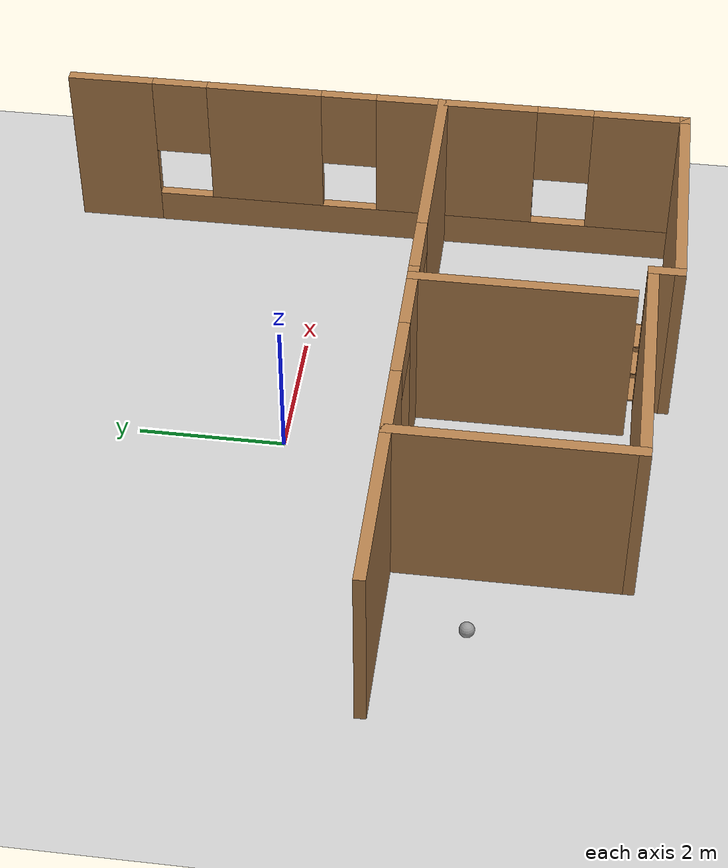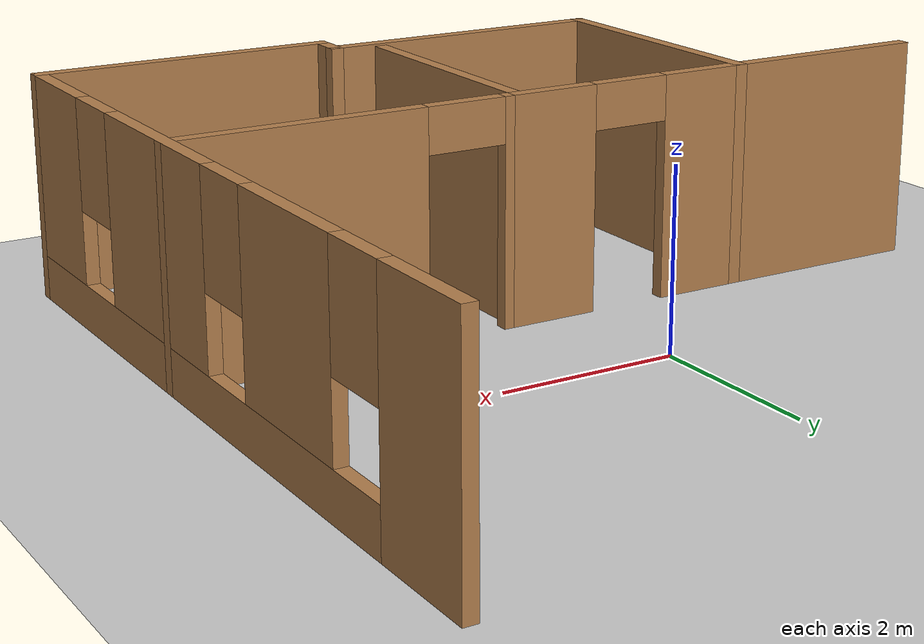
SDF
<sdf version="1.6">
 <world name="default">
  <model name="ground_plane">
   <static>1</static>
   <link name="link">
    <collision name="collision">
     <geometry><plane><normal>0 0 1</normal><size>100 100</size></plane></geometry>
     <surface><friction><ode><mu>100</mu><mu2>50</mu2></ode></friction></surface>
    </collision>
    <visual name="visual">
     <cast_shadows>0</cast_shadows>
     <geometry><plane><normal>0 0 1</normal><size>100 100</size></plane></geometry>
     <material>
      <script><uri>file://media/materials/scripts/gazebo.material</uri><name>Gazebo/Grey</name></script>
     </material>
    </visual>
   </link>
  </model>
  <model name="cabinet">
   <static>1</static>
   <link name="cabinet_bottom_plate">
    <inertial>
     <pose>0 0 -1 0 -0 0</pose>
     <inertia><ixx>2.05</ixx><ixy>0</ixy><ixz>0</ixz><iyy>2.05</iyy><iyz>0</iyz><izz>2.05</izz></inertia>
     <mass>25</mass>
    </inertial>
    <collision name="cabinet_bottom_plate_geom">
     <pose>0 0 0.01 0 -0 0</pose>
     <geometry><box><size>0.45 0.45 0.02</size></box></geometry>
    </collision>
    <visual name="cabinet_bottom_plate_geom_visual">
     <pose>0 0 0.01 0 -0 0</pose>
     <geometry><box><size>0.45 0.45 0.02</size></box></geometry>
     <material>
      <script><uri>file://media/materials/scripts/gazebo.material</uri><name>Gazebo/Wood</name></script>
     </material>
    </visual>
    <collision name="cabinet_bottom_plate_geom_cabinet_back_plate">
     <pose>0.235 0 0.51 0 -0 0</pose>
     <geometry><box><size>0.02 0.45 1.02</size></box></geometry>
    </collision>
    <visual name="cabinet_bottom_plate_geom_cabinet_back_plate_visual">
     <pose>0.235 0 0.51 0 -0 0</pose>
     <geometry><box><size>0.02 0.45 1.02</size></box></geometry>
     <material>
      <script><uri>file://media/materials/scripts/gazebo.material</uri><name>Gazebo/Wood</name></script>
     </material>
    </visual>
    <collision name="cabinet_bottom_plate_geom_cabinet_left_plate">
     <pose>0 0.235 0.51 0 -0 0</pose>
     <geometry><box><size>0.45 0.02 1.02</size></box></geometry>
    </collision>
    <visual name="cabinet_bottom_plate_geom_cabinet_left_plate_visual">
     <pose>0 0.235 0.51 0 -0 0</pose>
     <geometry><box><size>0.45 0.02 1.02</size></box></geometry>
     <material>
      <script><uri>file://media/materials/scripts/gazebo.material</uri><name>Gazebo/Wood</name></script>
     </material>
    </visual>
    <collision name="cabinet_bottom_plate_geom_cabinet_middle_plate">
     <pose>0 0 0.51 0 -0 0</pose>
     <geometry><box><size>0.45 0.45 0.02</size></box></geometry>
    </collision>
    <visual name="cabinet_bottom_plate_geom_cabinet_middle_plate_visual">
     <pose>0 0 0.51 0 -0 0</pose>
     <geometry><box><size>0.45 0.45 0.02</size></box></geometry>
     <material>
      <script><uri>file://media/materials/scripts/gazebo.material</uri><name>Gazebo/Wood</name></script>
     </material>
    </visual>
    <collision name="cabinet_bottom_plate_geom_cabinet_right_plate">
     <pose>0 -0.235 0.51 0 -0 0</pose>
     <geometry><box><size>0.45 0.02 1.02</size></box></geometry>
    </collision>
    <visual name="cabinet_bottom_plate_geom_cabinet_right_plate_visual">
     <pose>0 -0.235 0.51 0 -0 0</pose>
     <geometry><box><size>0.45 0.02 1.02</size></box></geometry>
     <material>
      <script><uri>file://media/materials/scripts/gazebo.material</uri><name>Gazebo/Wood</name></script>
     </material>
    </visual>
    <collision name="cabinet_bottom_plate_geom_cabinet_top_plate">
     <pose>0 0 1.01 0 -0 0</pose>
     <geometry><box><size>0.45 0.45 0.02</size></box></geometry>
    </collision>
    <visual name="cabinet_bottom_plate_geom_cabinet_top_plate_visual">
     <pose>0 0 1.01 0 -0 0</pose>
     <geometry><box><size>0.45 0.45 0.02</size></box></geometry>
     <material>
      <script><uri>file://media/materials/scripts/gazebo.material</uri><name>Gazebo/Wood</name></script>
     </material>
    </visual>
   </link>
   <pose>1.66738 -4.78154 0 0 -0 0</pose>
  </model>
  <model name="badrs">
   <link name="Wall_21">
    <pose>4.52353 -0.681546 0 0 0 -1.5708</pose>
    <inertial>
     <mass>1</mass>
     <inertia><ixx>1</ixx><ixy>0</ixy><ixz>0</ixz><iyy>1</iyy><iyz>0</iyz><izz>1</izz></inertia>
    </inertial>
    <visual name="Wall_21_Visual_0">
     <pose>-3.88245 0 1.25 0 -0 0</pose>
     <geometry><box><size>1.2351 0.15 2.5</size></box></geometry>
     <material>
      <script><uri>file://media/materials/scripts/gazebo.material</uri><name>Gazebo/Wood</name></script>
      <ambient>1 1 1 1</ambient>
      <shader type="pixel"><normal_map>__default__</normal_map></shader>
      <diffuse>1 1 1 1</diffuse>
      <specular>0 0 0 1</specular>
      <emissive>0 0 0 1</emissive>
     </material>
     <meta><layer>0</layer></meta>
    </visual>
    <visual name="Wall_21_Visual_1">
     <pose>0.617551 0 0.25 0 -0 0</pose>
     <geometry><box><size>7.7649 0.15 0.5</size></box></geometry>
     <material>
      <script><uri>file://media/materials/scripts/gazebo.material</uri><name>Gazebo/Wood</name></script>
      <ambient>1 1 1 1</ambient>
      <shader type="pixel"><normal_map>__default__</normal_map></shader>
      <diffuse>1 1 1 1</diffuse>
      <specular>0 0 0 1</specular>
      <emissive>0 0 0 1</emissive>
     </material>
     <meta><layer>0</layer></meta>
    </visual>
    <visual name="Wall_21_Visual_2">
     <pose>-1.62599 0 1.5 0 -0 0</pose>
     <geometry><box><size>1.67781 0.15 2</size></box></geometry>
     <material>
      <script><uri>file://media/materials/scripts/gazebo.material</uri><name>Gazebo/Wood</name></script>
      <ambient>1 1 1 1</ambient>
      <shader type="pixel"><normal_map>__default__</normal_map></shader>
      <diffuse>1 1 1 1</diffuse>
      <specular>0 0 0 1</specular>
      <emissive>0 0 0 1</emissive>
     </material>
     <meta><layer>0</layer></meta>
    </visual>
    <visual name="Wall_21_Visual_3">
     <pose>1.17301 0 1.5 0 -0 0</pose>
     <geometry><box><size>2.3202 0.15 2</size></box></geometry>
     <material>
      <script><uri>file://media/materials/scripts/gazebo.material</uri><name>Gazebo/Wood</name></script>
      <ambient>1 1 1 1</ambient>
      <shader type="pixel"><normal_map>__default__</normal_map></shader>
      <diffuse>1 1 1 1</diffuse>
      <specular>0 0 0 1</specular>
      <emissive>0 0 0 1</emissive>
     </material>
     <meta><layer>0</layer></meta>
    </visual>
    <visual name="Wall_21_Visual_4">
     <pose>3.81656 0 1.5 0 -0 0</pose>
     <geometry><box><size>1.36689 0.15 2</size></box></geometry>
     <material>
      <script><uri>file://media/materials/scripts/gazebo.material</uri><name>Gazebo/Wood</name></script>
      <ambient>1 1 1 1</ambient>
      <shader type="pixel"><normal_map>__default__</normal_map></shader>
      <diffuse>1 1 1 1</diffuse>
      <specular>0 0 0 1</specular>
      <emissive>0 0 0 1</emissive>
     </material>
     <meta><layer>0</layer></meta>
    </visual>
    <visual name="Wall_21_Visual_5">
     <pose>-2.8649 0 1.9 0 -0 0</pose>
     <geometry><box><size>0.8 0.15 1.2</size></box></geometry>
     <material>
      <script><uri>file://media/materials/scripts/gazebo.material</uri><name>Gazebo/Wood</name></script>
      <ambient>1 1 1 1</ambient>
      <shader type="pixel"><normal_map>__default__</normal_map></shader>
      <diffuse>1 1 1 1</diffuse>
      <specular>0 0 0 1</specular>
      <emissive>0 0 0 1</emissive>
     </material>
     <meta><layer>0</layer></meta>
    </visual>
    <visual name="Wall_21_Visual_6">
     <pose>-0.38709 0 1.9 0 -0 0</pose>
     <geometry><box><size>0.8 0.15 1.2</size></box></geometry>
     <material>
      <script><uri>file://media/materials/scripts/gazebo.material</uri><name>Gazebo/Wood</name></script>
      <ambient>1 1 1 1</ambient>
      <shader type="pixel"><normal_map>__default__</normal_map></shader>
      <diffuse>1 1 1 1</diffuse>
      <specular>0 0 0 1</specular>
      <emissive>0 0 0 1</emissive>
     </material>
     <meta><layer>0</layer></meta>
    </visual>
    <visual name="Wall_21_Visual_7">
     <pose>2.73311 0 1.9 0 -0 0</pose>
     <geometry><box><size>0.8 0.15 1.2</size></box></geometry>
     <material>
      <script><uri>file://media/materials/scripts/gazebo.material</uri><name>Gazebo/Wood</name></script>
      <ambient>1 1 1 1</ambient>
      <shader type="pixel"><normal_map>__default__</normal_map></shader>
      <diffuse>1 1 1 1</diffuse>
      <specular>0 0 0 1</specular>
      <emissive>0 0 0 1</emissive>
     </material>
     <meta><layer>0</layer></meta>
    </visual>
    <collision name="Wall_21_Collision_0">
     <pose>-3.88245 0 1.25 0 -0 0</pose>
     <geometry><box><size>1.2351 0.15 2.5</size></box></geometry>
     <surface>
      <friction>
       <ode><mu>1</mu><mu2>1</mu2><fdir1>0 0 0</fdir1><slip1>0</slip1><slip2>0</slip2></ode>
       <torsional>
        <coefficient>1</coefficient>
        <patch_radius>0</patch_radius>
        <surface_radius>0</surface_radius>
        <use_patch_radius>1</use_patch_radius>
        <ode><slip>0</slip></ode>
       </torsional>
      </friction>
      <bounce><restitution_coefficient>0</restitution_coefficient><threshold>1e+06</threshold></bounce>
      <contact>
       <collide_without_contact>0</collide_without_contact>
       <collide_without_contact_bitmask>1</collide_without_contact_bitmask>
       <collide_bitmask>1</collide_bitmask>
       <ode>
        <soft_cfm>0</soft_cfm>
        <soft_erp>0.2</soft_erp>
        <kp>1e+13</kp>
        <kd>1</kd>
        <max_vel>0.01</max_vel>
        <min_depth>0</min_depth>
       </ode>
       <bullet>
        <split_impulse>1</split_impulse>
        <split_impulse_penetration_threshold>-0.01</split_impulse_penetration_threshold>
        <soft_cfm>0</soft_cfm>
        <soft_erp>0.2</soft_erp>
        <kp>1e+13</kp>
        <kd>1</kd>
       </bullet>
      </contact>
     </surface>
    </collision>
    <collision name="Wall_21_Collision_1">
     <pose>0.617551 0 0.25 0 -0 0</pose>
     <geometry><box><size>7.7649 0.15 0.5</size></box></geometry>
     <surface>
      <friction>
       <ode><mu>1</mu><mu2>1</mu2><fdir1>0 0 0</fdir1><slip1>0</slip1><slip2>0</slip2></ode>
       <torsional>
        <coefficient>1</coefficient>
        <patch_radius>0</patch_radius>
        <surface_radius>0</surface_radius>
        <use_patch_radius>1</use_patch_radius>
        <ode><slip>0</slip></ode>
       </torsional>
      </friction>
      <bounce><restitution_coefficient>0</restitution_coefficient><threshold>1e+06</threshold></bounce>
      <contact>
       <collide_without_contact>0</collide_without_contact>
       <collide_without_contact_bitmask>1</collide_without_contact_bitmask>
       <collide_bitmask>1</collide_bitmask>
       <ode>
        <soft_cfm>0</soft_cfm>
        <soft_erp>0.2</soft_erp>
        <kp>1e+13</kp>
        <kd>1</kd>
        <max_vel>0.01</max_vel>
        <min_depth>0</min_depth>
       </ode>
       <bullet>
        <split_impulse>1</split_impulse>
        <split_impulse_penetration_threshold>-0.01</split_impulse_penetration_threshold>
        <soft_cfm>0</soft_cfm>
        <soft_erp>0.2</soft_erp>
        <kp>1e+13</kp>
        <kd>1</kd>
       </bullet>
      </contact>
     </surface>
    </collision>
    <collision name="Wall_21_Collision_2">
     <pose>-1.62599 0 1.5 0 -0 0</pose>
     <geometry><box><size>1.67781 0.15 2</size></box></geometry>
     <surface>
      <friction>
       <ode><mu>1</mu><mu2>1</mu2><fdir1>0 0 0</fdir1><slip1>0</slip1><slip2>0</slip2></ode>
       <torsional>
        <coefficient>1</coefficient>
        <patch_radius>0</patch_radius>
        <surface_radius>0</surface_radius>
        <use_patch_radius>1</use_patch_radius>
        <ode><slip>0</slip></ode>
       </torsional>
      </friction>
      <bounce><restitution_coefficient>0</restitution_coefficient><threshold>1e+06</threshold></bounce>
      <contact>
       <collide_without_contact>0</collide_without_contact>
       <collide_without_contact_bitmask>1</collide_without_contact_bitmask>
       <collide_bitmask>1</collide_bitmask>
       <ode>
        <soft_cfm>0</soft_cfm>
        <soft_erp>0.2</soft_erp>
        <kp>1e+13</kp>
        <kd>1</kd>
        <max_vel>0.01</max_vel>
        <min_depth>0</min_depth>
       </ode>
       <bullet>
        <split_impulse>1</split_impulse>
        <split_impulse_penetration_threshold>-0.01</split_impulse_penetration_threshold>
        <soft_cfm>0</soft_cfm>
        <soft_erp>0.2</soft_erp>
        <kp>1e+13</kp>
        <kd>1</kd>
       </bullet>
      </contact>
     </surface>
    </collision>
    <collision name="Wall_21_Collision_3">
     <pose>1.17301 0 1.5 0 -0 0</pose>
     <geometry><box><size>2.3202 0.15 2</size></box></geometry>
     <surface>
      <friction>
       <ode><mu>1</mu><mu2>1</mu2><fdir1>0 0 0</fdir1><slip1>0</slip1><slip2>0</slip2></ode>
       <torsional>
        <coefficient>1</coefficient>
        <patch_radius>0</patch_radius>
        <surface_radius>0</surface_radius>
        <use_patch_radius>1</use_patch_radius>
        <ode><slip>0</slip></ode>
       </torsional>
      </friction>
      <bounce><restitution_coefficient>0</restitution_coefficient><threshold>1e+06</threshold></bounce>
      <contact>
       <collide_without_contact>0</collide_without_contact>
       <collide_without_contact_bitmask>1</collide_without_contact_bitmask>
       <collide_bitmask>1</collide_bitmask>
       <ode>
        <soft_cfm>0</soft_cfm>
        <soft_erp>0.2</soft_erp>
        <kp>1e+13</kp>
        <kd>1</kd>
        <max_vel>0.01</max_vel>
        <min_depth>0</min_depth>
       </ode>
       <bullet>
        <split_impulse>1</split_impulse>
        <split_impulse_penetration_threshold>-0.01</split_impulse_penetration_threshold>
        <soft_cfm>0</soft_cfm>
        <soft_erp>0.2</soft_erp>
        <kp>1e+13</kp>
        <kd>1</kd>
       </bullet>
      </contact>
     </surface>
    </collision>
    <collision name="Wall_21_Collision_4">
     <pose>3.81656 0 1.5 0 -0 0</pose>
     <geometry><box><size>1.36689 0.15 2</size></box></geometry>
     <surface>
      <friction>
       <ode><mu>1</mu><mu2>1</mu2><fdir1>0 0 0</fdir1><slip1>0</slip1><slip2>0</slip2></ode>
       <torsional>
        <coefficient>1</coefficient>
        <patch_radius>0</patch_radius>
        <surface_radius>0</surface_radius>
        <use_patch_radius>1</use_patch_radius>
        <ode><slip>0</slip></ode>
       </torsional>
      </friction>
      <bounce><restitution_coefficient>0</restitution_coefficient><threshold>1e+06</threshold></bounce>
      <contact>
       <collide_without_contact>0</collide_without_contact>
       <collide_without_contact_bitmask>1</collide_without_contact_bitmask>
       <collide_bitmask>1</collide_bitmask>
       <ode>
        <soft_cfm>0</soft_cfm>
        <soft_erp>0.2</soft_erp>
        <kp>1e+13</kp>
        <kd>1</kd>
        <max_vel>0.01</max_vel>
        <min_depth>0</min_depth>
       </ode>
       <bullet>
        <split_impulse>1</split_impulse>
        <split_impulse_penetration_threshold>-0.01</split_impulse_penetration_threshold>
        <soft_cfm>0</soft_cfm>
        <soft_erp>0.2</soft_erp>
        <kp>1e+13</kp>
        <kd>1</kd>
       </bullet>
      </contact>
     </surface>
    </collision>
    <collision name="Wall_21_Collision_6">
     <pose>-0.38709 0 1.9 0 -0 0</pose>
     <geometry><box><size>0.8 0.15 1.2</size></box></geometry>
     <surface>
      <friction>
       <ode><mu>1</mu><mu2>1</mu2><fdir1>0 0 0</fdir1><slip1>0</slip1><slip2>0</slip2></ode>
       <torsional>
        <coefficient>1</coefficient>
        <patch_radius>0</patch_radius>
        <surface_radius>0</surface_radius>
        <use_patch_radius>1</use_patch_radius>
        <ode><slip>0</slip></ode>
       </torsional>
      </friction>
      <bounce><restitution_coefficient>0</restitution_coefficient><threshold>1e+06</threshold></bounce>
      <contact>
       <collide_without_contact>0</collide_without_contact>
       <collide_without_contact_bitmask>1</collide_without_contact_bitmask>
       <collide_bitmask>1</collide_bitmask>
       <ode>
        <soft_cfm>0</soft_cfm>
        <soft_erp>0.2</soft_erp>
        <kp>1e+13</kp>
        <kd>1</kd>
        <max_vel>0.01</max_vel>
        <min_depth>0</min_depth>
       </ode>
       <bullet>
        <split_impulse>1</split_impulse>
        <split_impulse_penetration_threshold>-0.01</split_impulse_penetration_threshold>
        <soft_cfm>0</soft_cfm>
        <soft_erp>0.2</soft_erp>
        <kp>1e+13</kp>
        <kd>1</kd>
       </bullet>
      </contact>
     </surface>
    </collision>
    <collision name="Wall_21_Collision_5">
     <pose>-2.8649 0 1.9 0 -0 0</pose>
     <geometry><box><size>0.8 0.15 1.2</size></box></geometry>
     <surface>
      <friction>
       <ode><mu>1</mu><mu2>1</mu2><fdir1>0 0 0</fdir1><slip1>0</slip1><slip2>0</slip2></ode>
       <torsional>
        <coefficient>1</coefficient>
        <patch_radius>0</patch_radius>
        <surface_radius>0</surface_radius>
        <use_patch_radius>1</use_patch_radius>
        <ode><slip>0</slip></ode>
       </torsional>
      </friction>
      <bounce><restitution_coefficient>0</restitution_coefficient><threshold>1e+06</threshold></bounce>
      <contact>
       <collide_without_contact>0</collide_without_contact>
       <collide_without_contact_bitmask>1</collide_without_contact_bitmask>
       <collide_bitmask>1</collide_bitmask>
       <ode>
        <soft_cfm>0</soft_cfm>
        <soft_erp>0.2</soft_erp>
        <kp>1e+13</kp>
        <kd>1</kd>
        <max_vel>0.01</max_vel>
        <min_depth>0</min_depth>
       </ode>
       <bullet>
        <split_impulse>1</split_impulse>
        <split_impulse_penetration_threshold>-0.01</split_impulse_penetration_threshold>
        <soft_cfm>0</soft_cfm>
        <soft_erp>0.2</soft_erp>
        <kp>1e+13</kp>
        <kd>1</kd>
       </bullet>
      </contact>
     </surface>
    </collision>
    <collision name="Wall_21_Collision_7">
     <pose>2.73311 0 1.9 0 -0 0</pose>
     <geometry><box><size>0.8 0.15 1.2</size></box></geometry>
     <surface>
      <friction>
       <ode><mu>1</mu><mu2>1</mu2><fdir1>0 0 0</fdir1><slip1>0</slip1><slip2>0</slip2></ode>
       <torsional>
        <coefficient>1</coefficient>
        <patch_radius>0</patch_radius>
        <surface_radius>0</surface_radius>
        <use_patch_radius>1</use_patch_radius>
        <ode><slip>0</slip></ode>
       </torsional>
      </friction>
      <bounce><restitution_coefficient>0</restitution_coefficient><threshold>1e+06</threshold></bounce>
      <contact>
       <collide_without_contact>0</collide_without_contact>
       <collide_without_contact_bitmask>1</collide_without_contact_bitmask>
       <collide_bitmask>1</collide_bitmask>
       <ode>
        <soft_cfm>0</soft_cfm>
        <soft_erp>0.2</soft_erp>
        <kp>1e+13</kp>
        <kd>1</kd>
        <max_vel>0.01</max_vel>
        <min_depth>0</min_depth>
       </ode>
       <bullet>
        <split_impulse>1</split_impulse>
        <split_impulse_penetration_threshold>-0.01</split_impulse_penetration_threshold>
        <soft_cfm>0</soft_cfm>
        <soft_erp>0.2</soft_erp>
        <kp>1e+13</kp>
        <kd>1</kd>
       </bullet>
      </contact>
     </surface>
    </collision>
   </link>
   <link name="Wall_22">
    <pose>2.84853 -5.10655 0 0 -0 3.14159</pose>
    <inertial>
     <mass>1</mass>
     <inertia><ixx>1</ixx><ixy>0</ixy><ixz>0</ixz><iyy>1</iyy><iyz>0</iyz><izz>1</izz></inertia>
    </inertial>
    <visual name="Wall_22_Visual">
     <pose>0 0 1.25 0 -0 0</pose>
     <geometry><box><size>3.5 0.15 2.5</size></box></geometry>
     <material>
      <script><uri>file://media/materials/scripts/gazebo.material</uri><name>Gazebo/Wood</name></script>
      <ambient>1 1 1 1</ambient>
      <shader type="pixel"><normal_map>__default__</normal_map></shader>
      <diffuse>1 1 1 1</diffuse>
      <specular>0 0 0 1</specular>
      <emissive>0 0 0 1</emissive>
     </material>
     <meta><layer>0</layer></meta>
    </visual>
    <collision name="Wall_22_Collision">
     <pose>0 0 1.25 0 -0 0</pose>
     <geometry><box><size>3.5 0.15 2.5</size></box></geometry>
     <surface>
      <friction>
       <ode><mu>1</mu><mu2>1</mu2><fdir1>0 0 0</fdir1><slip1>0</slip1><slip2>0</slip2></ode>
       <torsional>
        <coefficient>1</coefficient>
        <patch_radius>0</patch_radius>
        <surface_radius>0</surface_radius>
        <use_patch_radius>1</use_patch_radius>
        <ode><slip>0</slip></ode>
       </torsional>
      </friction>
      <bounce><restitution_coefficient>0</restitution_coefficient><threshold>1e+06</threshold></bounce>
      <contact>
       <collide_without_contact>0</collide_without_contact>
       <collide_without_contact_bitmask>1</collide_without_contact_bitmask>
       <collide_bitmask>1</collide_bitmask>
       <ode>
        <soft_cfm>0</soft_cfm>
        <soft_erp>0.2</soft_erp>
        <kp>1e+13</kp>
        <kd>1</kd>
        <max_vel>0.01</max_vel>
        <min_depth>0</min_depth>
       </ode>
       <bullet>
        <split_impulse>1</split_impulse>
        <split_impulse_penetration_threshold>-0.01</split_impulse_penetration_threshold>
        <soft_cfm>0</soft_cfm>
        <soft_erp>0.2</soft_erp>
        <kp>1e+13</kp>
        <kd>1</kd>
       </bullet>
      </contact>
     </surface>
    </collision>
   </link>
   <link name="Wall_23">
    <pose>1.17353 -4.93155 0 0 -0 1.5708</pose>
    <inertial>
     <mass>1</mass>
     <inertia><ixx>1</ixx><ixy>0</ixy><ixz>0</ixz><iyy>1</iyy><iyz>0</iyz><izz>1</izz></inertia>
    </inertial>
    <visual name="Wall_23_Visual">
     <pose>0 0 1.25 0 -0 0</pose>
     <geometry><box><size>0.5 0.15 2.5</size></box></geometry>
     <material>
      <script><uri>file://media/materials/scripts/gazebo.material</uri><name>Gazebo/Wood</name></script>
      <ambient>1 1 1 1</ambient>
      <shader type="pixel"><normal_map>__default__</normal_map></shader>
      <diffuse>0.7 0.7 0.7 1</diffuse>
      <specular>0.01 0.01 0.01 1</specular>
      <emissive>0 0 0 1</emissive>
     </material>
     <meta><layer>0</layer></meta>
    </visual>
    <collision name="Wall_23_Collision">
     <pose>0 0 1.25 0 -0 0</pose>
     <geometry><box><size>0.5 0.15 2.5</size></box></geometry>
     <surface>
      <friction>
       <ode><mu>1</mu><mu2>1</mu2><fdir1>0 0 0</fdir1><slip1>0</slip1><slip2>0</slip2></ode>
       <torsional>
        <coefficient>1</coefficient>
        <patch_radius>0</patch_radius>
        <surface_radius>0</surface_radius>
        <use_patch_radius>1</use_patch_radius>
        <ode><slip>0</slip></ode>
       </torsional>
      </friction>
      <bounce><restitution_coefficient>0</restitution_coefficient><threshold>1e+06</threshold></bounce>
      <contact>
       <collide_without_contact>0</collide_without_contact>
       <collide_without_contact_bitmask>1</collide_without_contact_bitmask>
       <collide_bitmask>1</collide_bitmask>
       <ode>
        <soft_cfm>0</soft_cfm>
        <soft_erp>0.2</soft_erp>
        <kp>1e+13</kp>
        <kd>1</kd>
        <max_vel>0.01</max_vel>
        <min_depth>0</min_depth>
       </ode>
       <bullet>
        <split_impulse>1</split_impulse>
        <split_impulse_penetration_threshold>-0.01</split_impulse_penetration_threshold>
        <soft_cfm>0</soft_cfm>
        <soft_erp>0.2</soft_erp>
        <kp>1e+13</kp>
        <kd>1</kd>
       </bullet>
      </contact>
     </surface>
    </collision>
   </link>
   <link name="Wall_24">
    <pose>-0.501469 -4.75655 0 0 -0 3.14159</pose>
    <inertial>
     <mass>1</mass>
     <inertia><ixx>1</ixx><ixy>0</ixy><ixz>0</ixz><iyy>1</iyy><iyz>0</iyz><izz>1</izz></inertia>
    </inertial>
    <visual name="Wall_24_Visual">
     <pose>0 0 1.25 0 -0 0</pose>
     <geometry><box><size>3.5 0.15 2.5</size></box></geometry>
     <material>
      <script><uri>file://media/materials/scripts/gazebo.material</uri><name>Gazebo/Wood</name></script>
      <ambient>1 1 1 1</ambient>
      <shader type="pixel"><normal_map>__default__</normal_map></shader>
      <diffuse>1 1 1 1</diffuse>
      <specular>0 0 0 1</specular>
      <emissive>0 0 0 1</emissive>
     </material>
     <meta><layer>0</layer></meta>
    </visual>
    <collision name="Wall_24_Collision">
     <pose>0 0 1.25 0 -0 0</pose>
     <geometry><box><size>3.5 0.15 2.5</size></box></geometry>
     <surface>
      <friction>
       <ode><mu>1</mu><mu2>1</mu2><fdir1>0 0 0</fdir1><slip1>0</slip1><slip2>0</slip2></ode>
       <torsional>
        <coefficient>1</coefficient>
        <patch_radius>0</patch_radius>
        <surface_radius>0</surface_radius>
        <use_patch_radius>1</use_patch_radius>
        <ode><slip>0</slip></ode>
       </torsional>
      </friction>
      <bounce><restitution_coefficient>0</restitution_coefficient><threshold>1e+06</threshold></bounce>
      <contact>
       <collide_without_contact>0</collide_without_contact>
       <collide_without_contact_bitmask>1</collide_without_contact_bitmask>
       <collide_bitmask>1</collide_bitmask>
       <ode>
        <soft_cfm>0</soft_cfm>
        <soft_erp>0.2</soft_erp>
        <kp>1e+13</kp>
        <kd>1</kd>
        <max_vel>0.01</max_vel>
        <min_depth>0</min_depth>
       </ode>
       <bullet>
        <split_impulse>1</split_impulse>
        <split_impulse_penetration_threshold>-0.01</split_impulse_penetration_threshold>
        <soft_cfm>0</soft_cfm>
        <soft_erp>0.2</soft_erp>
        <kp>1e+13</kp>
        <kd>1</kd>
       </bullet>
      </contact>
     </surface>
    </collision>
   </link>
   <link name="Wall_25">
    <pose>-2.17647 -3.20655 0 0 -0 1.5708</pose>
    <inertial>
     <mass>1</mass>
     <inertia><ixx>1</ixx><ixy>0</ixy><ixz>0</ixz><iyy>1</iyy><iyz>0</iyz><izz>1</izz></inertia>
    </inertial>
    <visual name="Wall_25_Visual">
     <pose>0 0 1.25 0 -0 0</pose>
     <geometry><box><size>3.25 0.15 2.5</size></box></geometry>
     <material>
      <script><uri>file://media/materials/scripts/gazebo.material</uri><name>Gazebo/Wood</name></script>
      <ambient>1 1 1 1</ambient>
      <shader type="pixel"><normal_map>__default__</normal_map></shader>
      <diffuse>0.7 0.7 0.7 1</diffuse>
      <specular>0.01 0.01 0.01 1</specular>
      <emissive>0 0 0 1</emissive>
     </material>
     <meta><layer>0</layer></meta>
    </visual>
    <collision name="Wall_25_Collision">
     <pose>0 0 1.25 0 -0 0</pose>
     <geometry><box><size>3.25 0.15 2.5</size></box></geometry>
     <surface>
      <friction>
       <ode><mu>1</mu><mu2>1</mu2><fdir1>0 0 0</fdir1><slip1>0</slip1><slip2>0</slip2></ode>
       <torsional>
        <coefficient>1</coefficient>
        <patch_radius>0</patch_radius>
        <surface_radius>0</surface_radius>
        <use_patch_radius>1</use_patch_radius>
        <ode><slip>0</slip></ode>
       </torsional>
      </friction>
      <bounce><restitution_coefficient>0</restitution_coefficient><threshold>1e+06</threshold></bounce>
      <contact>
       <collide_without_contact>0</collide_without_contact>
       <collide_without_contact_bitmask>1</collide_without_contact_bitmask>
       <collide_bitmask>1</collide_bitmask>
       <ode>
        <soft_cfm>0</soft_cfm>
        <soft_erp>0.2</soft_erp>
        <kp>1e+13</kp>
        <kd>1</kd>
        <max_vel>0.01</max_vel>
        <min_depth>0</min_depth>
       </ode>
       <bullet>
        <split_impulse>1</split_impulse>
        <split_impulse_penetration_threshold>-0.01</split_impulse_penetration_threshold>
        <soft_cfm>0</soft_cfm>
        <soft_erp>0.2</soft_erp>
        <kp>1e+13</kp>
        <kd>1</kd>
       </bullet>
      </contact>
     </surface>
    </collision>
   </link>
   <link name="Wall_26">
    <pose>-0.751469 -1.65655 0 0 -0 0</pose>
    <inertial>
     <mass>1</mass>
     <inertia><ixx>1</ixx><ixy>0</ixy><ixz>0</ixz><iyy>1</iyy><iyz>0</iyz><izz>1</izz></inertia>
    </inertial>
    <visual name="Wall_26_Visual_0">
     <pose>-0.952965 0 1.25 0 -0 0</pose>
     <geometry><box><size>1.09407 0.15 2.5</size></box></geometry>
     <material>
      <script><uri>file://media/materials/scripts/gazebo.material</uri><name>Gazebo/Wood</name></script>
      <ambient>1 1 1 1</ambient>
      <shader type="pixel"><normal_map>__default__</normal_map></shader>
      <diffuse>1 1 1 1</diffuse>
      <specular>0.2 0.2 0.2 1</specular>
      <emissive>0 0 0 1</emissive>
     </material>
     <meta><layer>0</layer></meta>
    </visual>
    <visual name="Wall_26_Visual_1">
     <pose>0.997035 0 1.25 0 -0 0</pose>
     <geometry><box><size>1.00593 0.15 2.5</size></box></geometry>
     <material>
      <script><uri>file://media/materials/scripts/gazebo.material</uri><name>Gazebo/Wood</name></script>
      <ambient>1 1 1 1</ambient>
      <shader type="pixel"><normal_map>__default__</normal_map></shader>
      <diffuse>1 1 1 1</diffuse>
      <specular>0.2 0.2 0.2 1</specular>
      <emissive>0 0 0 1</emissive>
     </material>
     <meta><layer>0</layer></meta>
    </visual>
    <visual name="Wall_26_Visual_2">
     <pose>0.044071 0 2.25 0 -0 0</pose>
     <geometry><box><size>0.9 0.15 0.5</size></box></geometry>
     <material>
      <script><uri>file://media/materials/scripts/gazebo.material</uri><name>Gazebo/Wood</name></script>
      <ambient>1 1 1 1</ambient>
      <shader type="pixel"><normal_map>__default__</normal_map></shader>
      <diffuse>1 1 1 1</diffuse>
      <specular>0.2 0.2 0.2 1</specular>
      <emissive>0 0 0 1</emissive>
     </material>
     <meta><layer>0</layer></meta>
    </visual>
    <collision name="Wall_26_Collision_2">
     <pose>0.044071 0 2.25 0 -0 0</pose>
     <geometry><box><size>0.9 0.15 0.5</size></box></geometry>
     <surface>
      <friction>
       <ode><mu>1</mu><mu2>1</mu2><fdir1>0 0 0</fdir1><slip1>0</slip1><slip2>0</slip2></ode>
       <torsional>
        <coefficient>1</coefficient>
        <patch_radius>0</patch_radius>
        <surface_radius>0</surface_radius>
        <use_patch_radius>1</use_patch_radius>
        <ode><slip>0</slip></ode>
       </torsional>
      </friction>
      <bounce><restitution_coefficient>0</restitution_coefficient><threshold>1e+06</threshold></bounce>
      <contact>
       <collide_without_contact>0</collide_without_contact>
       <collide_without_contact_bitmask>1</collide_without_contact_bitmask>
       <collide_bitmask>1</collide_bitmask>
       <ode>
        <soft_cfm>0</soft_cfm>
        <soft_erp>0.2</soft_erp>
        <kp>1e+13</kp>
        <kd>1</kd>
        <max_vel>0.01</max_vel>
        <min_depth>0</min_depth>
       </ode>
       <bullet>
        <split_impulse>1</split_impulse>
        <split_impulse_penetration_threshold>-0.01</split_impulse_penetration_threshold>
        <soft_cfm>0</soft_cfm>
        <soft_erp>0.2</soft_erp>
        <kp>1e+13</kp>
        <kd>1</kd>
       </bullet>
      </contact>
     </surface>
    </collision>
    <collision name="Wall_26_Collision_0">
     <pose>-0.952965 0 1.25 0 -0 0</pose>
     <geometry><box><size>1.09407 0.15 2.5</size></box></geometry>
     <surface>
      <friction>
       <ode><mu>1</mu><mu2>1</mu2><fdir1>0 0 0</fdir1><slip1>0</slip1><slip2>0</slip2></ode>
       <torsional>
        <coefficient>1</coefficient>
        <patch_radius>0</patch_radius>
        <surface_radius>0</surface_radius>
        <use_patch_radius>1</use_patch_radius>
        <ode><slip>0</slip></ode>
       </torsional>
      </friction>
      <bounce><restitution_coefficient>0</restitution_coefficient><threshold>1e+06</threshold></bounce>
      <contact>
       <collide_without_contact>0</collide_without_contact>
       <collide_without_contact_bitmask>1</collide_without_contact_bitmask>
       <collide_bitmask>1</collide_bitmask>
       <ode>
        <soft_cfm>0</soft_cfm>
        <soft_erp>0.2</soft_erp>
        <kp>1e+13</kp>
        <kd>1</kd>
        <max_vel>0.01</max_vel>
        <min_depth>0</min_depth>
       </ode>
       <bullet>
        <split_impulse>1</split_impulse>
        <split_impulse_penetration_threshold>-0.01</split_impulse_penetration_threshold>
        <soft_cfm>0</soft_cfm>
        <soft_erp>0.2</soft_erp>
        <kp>1e+13</kp>
        <kd>1</kd>
       </bullet>
      </contact>
     </surface>
    </collision>
    <collision name="Wall_26_Collision_1">
     <pose>0.997035 0 1.25 0 -0 0</pose>
     <geometry><box><size>1.00593 0.15 2.5</size></box></geometry>
     <surface>
      <friction>
       <ode><mu>1</mu><mu2>1</mu2><fdir1>0 0 0</fdir1><slip1>0</slip1><slip2>0</slip2></ode>
       <torsional>
        <coefficient>1</coefficient>
        <patch_radius>0</patch_radius>
        <surface_radius>0</surface_radius>
        <use_patch_radius>1</use_patch_radius>
        <ode><slip>0</slip></ode>
       </torsional>
      </friction>
      <bounce><restitution_coefficient>0</restitution_coefficient><threshold>1e+06</threshold></bounce>
      <contact>
       <collide_without_contact>0</collide_without_contact>
       <collide_without_contact_bitmask>1</collide_without_contact_bitmask>
       <collide_bitmask>1</collide_bitmask>
       <ode>
        <soft_cfm>0</soft_cfm>
        <soft_erp>0.2</soft_erp>
        <kp>1e+13</kp>
        <kd>1</kd>
        <max_vel>0.01</max_vel>
        <min_depth>0</min_depth>
       </ode>
       <bullet>
        <split_impulse>1</split_impulse>
        <split_impulse_penetration_threshold>-0.01</split_impulse_penetration_threshold>
        <soft_cfm>0</soft_cfm>
        <soft_erp>0.2</soft_erp>
        <kp>1e+13</kp>
        <kd>1</kd>
       </bullet>
      </contact>
     </surface>
    </collision>
   </link>
   <link name="Wall_27">
    <pose>0.673531 -3.08155 0 0 0 -1.5708</pose>
    <inertial>
     <mass>1</mass>
     <inertia><ixx>1</ixx><ixy>0</ixy><ixz>0</ixz><iyy>1</iyy><iyz>0</iyz><izz>1</izz></inertia>
    </inertial>
    <visual name="Wall_27_Visual">
     <pose>0 0 1.25 0 -0 0</pose>
     <geometry><box><size>3 0.15 2.5</size></box></geometry>
     <material>
      <script><uri>file://media/materials/scripts/gazebo.material</uri><name>Gazebo/Wood</name></script>
      <ambient>1 1 1 1</ambient>
      <shader type="pixel"><normal_map>__default__</normal_map></shader>
      <diffuse>1 1 1 1</diffuse>
      <specular>0.2 0.2 0.2 1</specular>
      <emissive>0 0 0 1</emissive>
     </material>
     <meta><layer>0</layer></meta>
    </visual>
    <collision name="Wall_27_Collision">
     <pose>0 0 1.25 0 -0 0</pose>
     <geometry><box><size>3 0.15 2.5</size></box></geometry>
     <surface>
      <friction>
       <ode><mu>1</mu><mu2>1</mu2><fdir1>0 0 0</fdir1><slip1>0</slip1><slip2>0</slip2></ode>
       <torsional>
        <coefficient>1</coefficient>
        <patch_radius>0</patch_radius>
        <surface_radius>0</surface_radius>
        <use_patch_radius>1</use_patch_radius>
        <ode><slip>0</slip></ode>
       </torsional>
      </friction>
      <bounce><restitution_coefficient>0</restitution_coefficient><threshold>1e+06</threshold></bounce>
      <contact>
       <collide_without_contact>0</collide_without_contact>
       <collide_without_contact_bitmask>1</collide_without_contact_bitmask>
       <collide_bitmask>1</collide_bitmask>
       <ode>
        <soft_cfm>0</soft_cfm>
        <soft_erp>0.2</soft_erp>
        <kp>1e+13</kp>
        <kd>1</kd>
        <max_vel>0.01</max_vel>
        <min_depth>0</min_depth>
       </ode>
       <bullet>
        <split_impulse>1</split_impulse>
        <split_impulse_penetration_threshold>-0.01</split_impulse_penetration_threshold>
        <soft_cfm>0</soft_cfm>
        <soft_erp>0.2</soft_erp>
        <kp>1e+13</kp>
        <kd>1</kd>
       </bullet>
      </contact>
     </surface>
    </collision>
   </link>
   <link name="Wall_29">
    <pose>-3.35147 -1.65655 0 0 -0 3.14159</pose>
    <inertial>
     <mass>1</mass>
     <inertia><ixx>1</ixx><ixy>0</ixy><ixz>0</ixz><iyy>1</iyy><iyz>0</iyz><izz>1</izz></inertia>
    </inertial>
    <visual name="Wall_29_Visual">
     <pose>0 0 1.25 0 -0 0</pose>
     <geometry><box><size>2.5 0.15 2.5</size></box></geometry>
     <material>
      <script><uri>file://media/materials/scripts/gazebo.material</uri><name>Gazebo/Wood</name></script>
      <ambient>1 1 1 1</ambient>
      <shader type="pixel"><normal_map>__default__</normal_map></shader>
      <diffuse>1 1 1 1</diffuse>
      <specular>0.2 0.2 0.2 1</specular>
      <emissive>0 0 0 1</emissive>
     </material>
     <meta><layer>0</layer></meta>
    </visual>
    <collision name="Wall_29_Collision">
     <pose>0 0 1.25 0 -0 0</pose>
     <geometry><box><size>2.5 0.15 2.5</size></box></geometry>
     <surface>
      <friction>
       <ode><mu>1</mu><mu2>1</mu2><fdir1>0 0 0</fdir1><slip1>0</slip1><slip2>0</slip2></ode>
       <torsional>
        <coefficient>1</coefficient>
        <patch_radius>0</patch_radius>
        <surface_radius>0</surface_radius>
        <use_patch_radius>1</use_patch_radius>
        <ode><slip>0</slip></ode>
       </torsional>
      </friction>
      <bounce><restitution_coefficient>0</restitution_coefficient><threshold>1e+06</threshold></bounce>
      <contact>
       <collide_without_contact>0</collide_without_contact>
       <collide_without_contact_bitmask>1</collide_without_contact_bitmask>
       <collide_bitmask>1</collide_bitmask>
       <ode>
        <soft_cfm>0</soft_cfm>
        <soft_erp>0.2</soft_erp>
        <kp>1e+13</kp>
        <kd>1</kd>
        <max_vel>0.01</max_vel>
        <min_depth>0</min_depth>
       </ode>
       <bullet>
        <split_impulse>1</split_impulse>
        <split_impulse_penetration_threshold>-0.01</split_impulse_penetration_threshold>
        <soft_cfm>0</soft_cfm>
        <soft_erp>0.2</soft_erp>
        <kp>1e+13</kp>
        <kd>1</kd>
       </bullet>
      </contact>
     </surface>
    </collision>
   </link>
   <link name="Wall_41">
    <pose>2.59853 -1.65655 0 0 -0 0</pose>
    <inertial>
     <mass>1</mass>
     <inertia><ixx>1</ixx><ixy>0</ixy><ixz>0</ixz><iyy>1</iyy><iyz>0</iyz><izz>1</izz></inertia>
    </inertial>
    <visual name="Wall_41_Visual_0">
     <pose>-1.86849 0 1.25 0 -0 0</pose>
     <geometry><box><size>0.263026 0.15 2.5</size></box></geometry>
     <material>
      <script><uri>file://media/materials/scripts/gazebo.material</uri><name>Gazebo/Wood</name></script>
      <ambient>1 1 1 1</ambient>
      <shader type="pixel"><normal_map>__default__</normal_map></shader>
      <diffuse>1 1 1 1</diffuse>
      <specular>0.2 0.2 0.2 1</specular>
      <emissive>0 0 0 1</emissive>
     </material>
     <meta><layer>0</layer></meta>
    </visual>
    <visual name="Wall_41_Visual_1">
     <pose>0.581513 0 1.25 0 -0 0</pose>
     <geometry><box><size>2.83697 0.15 2.5</size></box></geometry>
     <material>
      <script><uri>file://media/materials/scripts/gazebo.material</uri><name>Gazebo/Wood</name></script>
      <ambient>1 1 1 1</ambient>
      <shader type="pixel"><normal_map>__default__</normal_map></shader>
      <diffuse>1 1 1 1</diffuse>
      <specular>0.2 0.2 0.2 1</specular>
      <emissive>0 0 0 1</emissive>
     </material>
     <meta><layer>0</layer></meta>
    </visual>
    <visual name="Wall_41_Visual_2">
     <pose>-1.28697 0 2.25 0 -0 0</pose>
     <geometry><box><size>0.9 0.15 0.5</size></box></geometry>
     <material>
      <script><uri>file://media/materials/scripts/gazebo.material</uri><name>Gazebo/Wood</name></script>
      <ambient>1 1 1 1</ambient>
      <shader type="pixel"><normal_map>__default__</normal_map></shader>
      <diffuse>1 1 1 1</diffuse>
      <specular>0.2 0.2 0.2 1</specular>
      <emissive>0 0 0 1</emissive>
     </material>
     <meta><layer>0</layer></meta>
    </visual>
    <collision name="Wall_41_Collision_0">
     <pose>-1.86849 0 1.25 0 -0 0</pose>
     <geometry><box><size>0.263026 0.15 2.5</size></box></geometry>
     <surface>
      <friction>
       <ode><mu>1</mu><mu2>1</mu2><fdir1>0 0 0</fdir1><slip1>0</slip1><slip2>0</slip2></ode>
       <torsional>
        <coefficient>1</coefficient>
        <patch_radius>0</patch_radius>
        <surface_radius>0</surface_radius>
        <use_patch_radius>1</use_patch_radius>
        <ode><slip>0</slip></ode>
       </torsional>
      </friction>
      <bounce><restitution_coefficient>0</restitution_coefficient><threshold>1e+06</threshold></bounce>
      <contact>
       <collide_without_contact>0</collide_without_contact>
       <collide_without_contact_bitmask>1</collide_without_contact_bitmask>
       <collide_bitmask>1</collide_bitmask>
       <ode>
        <soft_cfm>0</soft_cfm>
        <soft_erp>0.2</soft_erp>
        <kp>1e+13</kp>
        <kd>1</kd>
        <max_vel>0.01</max_vel>
        <min_depth>0</min_depth>
       </ode>
       <bullet>
        <split_impulse>1</split_impulse>
        <split_impulse_penetration_threshold>-0.01</split_impulse_penetration_threshold>
        <soft_cfm>0</soft_cfm>
        <soft_erp>0.2</soft_erp>
        <kp>1e+13</kp>
        <kd>1</kd>
       </bullet>
      </contact>
     </surface>
    </collision>
    <collision name="Wall_41_Collision_1">
     <pose>0.581513 0 1.25 0 -0 0</pose>
     <geometry><box><size>2.83697 0.15 2.5</size></box></geometry>
     <surface>
      <friction>
       <ode><mu>1</mu><mu2>1</mu2><fdir1>0 0 0</fdir1><slip1>0</slip1><slip2>0</slip2></ode>
       <torsional>
        <coefficient>1</coefficient>
        <patch_radius>0</patch_radius>
        <surface_radius>0</surface_radius>
        <use_patch_radius>1</use_patch_radius>
        <ode><slip>0</slip></ode>
       </torsional>
      </friction>
      <bounce><restitution_coefficient>0</restitution_coefficient><threshold>1e+06</threshold></bounce>
      <contact>
       <collide_without_contact>0</collide_without_contact>
       <collide_without_contact_bitmask>1</collide_without_contact_bitmask>
       <collide_bitmask>1</collide_bitmask>
       <ode>
        <soft_cfm>0</soft_cfm>
        <soft_erp>0.2</soft_erp>
        <kp>1e+13</kp>
        <kd>1</kd>
        <max_vel>0.01</max_vel>
        <min_depth>0</min_depth>
       </ode>
       <bullet>
        <split_impulse>1</split_impulse>
        <split_impulse_penetration_threshold>-0.01</split_impulse_penetration_threshold>
        <soft_cfm>0</soft_cfm>
        <soft_erp>0.2</soft_erp>
        <kp>1e+13</kp>
        <kd>1</kd>
       </bullet>
      </contact>
     </surface>
    </collision>
    <collision name="Wall_41_Collision_2">
     <pose>-1.28697 0 2.25 0 -0 0</pose>
     <geometry><box><size>0.9 0.15 0.5</size></box></geometry>
     <surface>
      <friction>
       <ode><mu>1</mu><mu2>1</mu2><fdir1>0 0 0</fdir1><slip1>0</slip1><slip2>0</slip2></ode>
       <torsional>
        <coefficient>1</coefficient>
        <patch_radius>0</patch_radius>
        <surface_radius>0</surface_radius>
        <use_patch_radius>1</use_patch_radius>
        <ode><slip>0</slip></ode>
       </torsional>
      </friction>
      <bounce><restitution_coefficient>0</restitution_coefficient><threshold>1e+06</threshold></bounce>
      <contact>
       <collide_without_contact>0</collide_without_contact>
       <collide_without_contact_bitmask>1</collide_without_contact_bitmask>
       <collide_bitmask>1</collide_bitmask>
       <ode>
        <soft_cfm>0</soft_cfm>
        <soft_erp>0.2</soft_erp>
        <kp>1e+13</kp>
        <kd>1</kd>
        <max_vel>0.01</max_vel>
        <min_depth>0</min_depth>
       </ode>
       <bullet>
        <split_impulse>1</split_impulse>
        <split_impulse_penetration_threshold>-0.01</split_impulse_penetration_threshold>
        <soft_cfm>0</soft_cfm>
        <soft_erp>0.2</soft_erp>
        <kp>1e+13</kp>
        <kd>1</kd>
       </bullet>
      </contact>
     </surface>
    </collision>
   </link>
   <static>1</static>
   <pose>0.14345 0.028465 0 0 -0 0</pose>
  </model>
  <model name="my_ball">
   <link name="link_0">
    <inertial>
     <mass>1</mass>
     <inertia><ixx>0.1</ixx><ixy>0</ixy><ixz>0</ixz><iyy>0.1</iyy><iyz>0</iyz><izz>0.1</izz></inertia>
    </inertial>
    <visual name="visual">
     <geometry><sphere><radius>0.1</radius></sphere></geometry>
     <material>
      <lighting>1</lighting>
      <script><uri>file://media/materials/scripts/gazebo.material</uri><name>Gazebo/Grey</name></script>
      <shader type="pixel"><normal_map>__default__</normal_map></shader>
      <ambient>1 1 1 1</ambient>
      <diffuse>1 1 1 1</diffuse>
      <specular>1 1 1 1</specular>
      <emissive>1 1 1 1</emissive>
     </material>
    </visual>
    <collision name="collision">
     <geometry><sphere><radius>0.1</radius></sphere></geometry>
     <surface>
      <friction>
       <ode><mu>1</mu><mu2>1</mu2><fdir1>0 0 0</fdir1><slip1>0</slip1><slip2>0</slip2></ode>
       <torsional>
        <coefficient>1</coefficient>
        <patch_radius>0</patch_radius>
        <surface_radius>0</surface_radius>
        <use_patch_radius>1</use_patch_radius>
        <ode><slip>0</slip></ode>
       </torsional>
      </friction>
      <bounce><restitution_coefficient>0</restitution_coefficient><threshold>1e+06</threshold></bounce>
      <contact>
       <collide_without_contact>0</collide_without_contact>
       <collide_without_contact_bitmask>1</collide_without_contact_bitmask>
       <collide_bitmask>1</collide_bitmask>
       <ode>
        <soft_cfm>0</soft_cfm>
        <soft_erp>0.2</soft_erp>
        <kp>1e+13</kp>
        <kd>1</kd>
        <max_vel>0.01</max_vel>
        <min_depth>0</min_depth>
       </ode>
       <bullet>
        <split_impulse>1</split_impulse>
        <split_impulse_penetration_threshold>-0.01</split_impulse_penetration_threshold>
        <soft_cfm>0</soft_cfm>
        <soft_erp>0.2</soft_erp>
        <kp>1e+13</kp>
        <kd>1</kd>
       </bullet>
      </contact>
     </surface>
    </collision>
   </link>
   <static>0</static>
   <pose>-3.01453 -2.7669 0.1 0 -0 0</pose>
  </model>
 </world>
</sdf>
